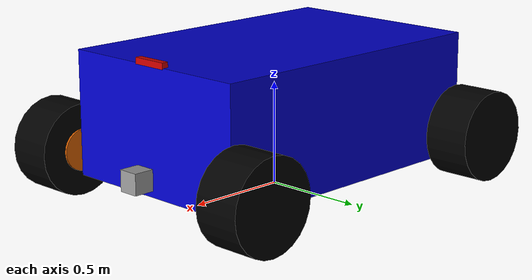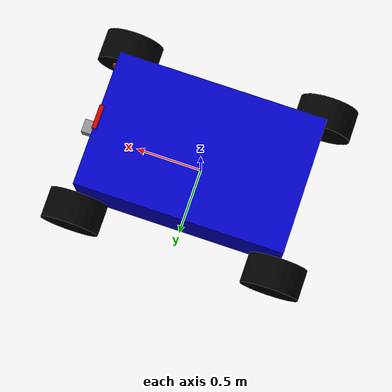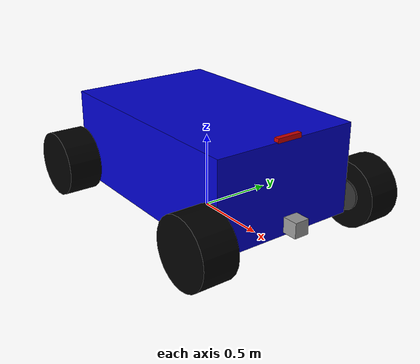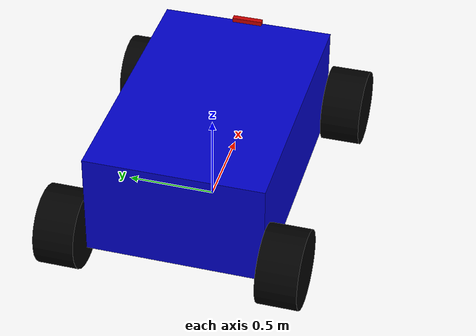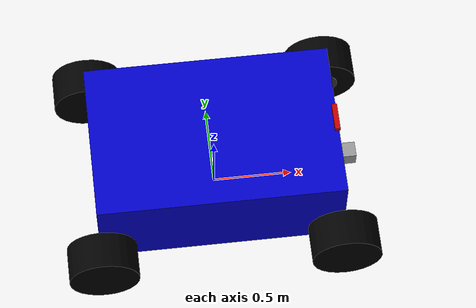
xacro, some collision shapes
<?xml version="1.0"?>
<robot name="racecar" xmlns:xacro="http://www.ros.org/wiki/xacro">

  <xacro:include filename="$(find bobcat_description)/urdf/macros.xacro" />

  <xacro:property name="PI" value="3.1415926835897931"/>
  <xacro:property name="base_height" value="0.4"/>
  <xacro:property name="base_mass" value="1000"/>
  <xacro:property name="base_mass_ixx" value="30"/>
  <xacro:property name="base_mass_iyy" value="500"/>
  <xacro:property name="base_mass_izz" value="550"/>
  <xacro:property name="base_mass_ixz" value="-15"/>
  <xacro:property name="tyre_x" value="0.76"/>
  <xacro:property name="tyre_y" value="0.5"/>
  <xacro:property name="tyre_length" value="0.229"/>
  <xacro:property name="tyre_height" value="-0.696"/>
  <xacro:property name="tyre_r" value="0.22"/>
  <xacro:property name="tyre_radius" value="0.22"/>
  <xacro:property name="tyre_mass" value="3"/>
  <xacro:property name="tyre_mass_ixx" value="20"/>
  <xacro:property name="tyre_mass_iyy" value="20"/>
  <xacro:property name="tyre_mass_izz" value="50"/>
  <xacro:property name="car_height" value="0.6"/>
  <xacro:property name="car_width" value="1.0"/>
  <xacro:property name="car_length" value="1.54"/>
  <xacro:property name="camera_box" value="0.1"/>
  <xacro:property name="str_length" value="0.01"/>
  <xacro:property name="str_radius" value="0.1"/>
  <xacro:property name="str_angle" value="0.5"/>
  <xacro:property name="tyre_origin">
	<origin xyz="0 0 0" rpy="${PI/2} 0 0"/>
  </xacro:property>
  <xacro:property name="tyre_origin_2">
        <origin xyz="0 0 0" rpy="0 0 ${PI/2}"/>
  </xacro:property>
  <xacro:property name="tyre_origin_3">
        <origin xyz="0 0 0" rpy="0 0 ${-PI/2}"/>
  </xacro:property>

  <!-- Add chassis and it's inertia link -->
  <link name="base_link">
    <collision>
	<origin xyz="0 0 ${base_height}" rpy= "0 0 0"/>
        <geometry>
            <box size="${car_length} ${car_width} ${car_height}"/>
        </geometry>
    </collision>
    <visual>
      <!--xacro:chassis_geometry/-->
      <origin xyz="0 0 ${base_height}" rpy="0 0 0" />
      <geometry>
        <box size="${car_length} ${car_width} ${car_height}"/>
      </geometry>
      <material name="blue" />
    </visual>
  </link>

  <link name="main_mass">
    <inertial>
      <!--xacro:chassis_inertial_params /-->
      <origin xyz="0 0 ${base_height}" rpy="0 0 0" />
      <mass value="${base_mass}" />
      <inertia
          ixx="${base_mass_ixx}"  ixy="0.000000" ixz="${base_mass_ixz}"
          iyy="${base_mass_iyy}"  iyz="0.000000"
          izz="${base_mass_izz}"/>
      </inertial>
      <dampingFactor>0.1</dampingFactor>
  </link>

  <joint name="inertia_joint" type="fixed">
    <parent link="base_link" />
    <child link="main_mass" />
    <origin xyz="0 0 0" rpy="0 0 0" />
  </joint>

  <!-- Left Rear Wheel -->
  <link name="left_rear_wheel">
    <collision>
      <xacro:insert_block name="tyre_origin"/>
      <!--xacro:left_wheels_collision_geometry/-->
      <geometry>
        <cylinder length="${tyre_length}" radius="${tyre_radius}"/>
      </geometry>
    </collision>
    <visual>
      <!--xacro:left_rear_wheel_geometry /-->
      <xacro:insert_block name="tyre_origin"/>
      <geometry>
        <cylinder length="${tyre_length}" radius="${tyre_radius}"/>
      </geometry>
      <material name="black" />
    </visual>
    <inertial>
      <!--xacro:left_wheels_inertial_params /-->
      <origin xyz="0 0 0" rpy="0 0 0"/>
      <mass value="${tyre_mass}"/>
      <inertia
          ixx="${tyre_mass_ixx}"  ixy="0.000000"  ixz="0.000000"
          iyy="${tyre_mass_iyy}"  iyz="0.000000"
          izz="${tyre_mass_izz}"/>
    </inertial>
  </link>

  <joint name="left_rear_wheel_joint" type="continuous">
    <parent link="base_link" />
    <child link="left_rear_wheel" />
    <origin xyz="${-tyre_x} ${car_width/2 + tyre_length/2} ${tyre_r}" rpy="0 0 ${PI}"/>
    <axis xyz="0 -1 0" />
    <dynamics damping="0.2"/>
    <limit effort="100000" velocity="100" />
    <joint_properties damping="0.0" friction="0.0" />
  </joint>
  <!-- this transmission is added to connect to wheel effort controller! dont delete"-->
  <xacro:wheel_transmission name="left_rear_wheel" />

  <!-- Right Rear Wheel -->
  <link name="right_rear_wheel">
    <collision>
      <!--xacro:right_wheels_collision_geometry /-->
      <xacro:insert_block name="tyre_origin"/>
      <geometry>
        <cylinder length="${tyre_length}" radius="${tyre_radius}"/>
      </geometry>
    </collision>
    <visual>
      <xacro:insert_block name="tyre_origin"/>
      <!--xacro:right_rear_wheel_geometry /-->
      <geometry>
        <cylinder length="${tyre_length}" radius="${tyre_radius}"/>
      </geometry>
      <material name="black" />
    </visual>
    <inertial>
      <!--xacro:right_wheels_inertial_params /-->
      <origin xyz="0 0 0" rpy="0 0 0"/>
      <mass value="${tyre_mass}"/>
      <inertia
          ixx="${tyre_mass_ixx}"  ixy="0.000000"  ixz="0.000000"
          iyy="${tyre_mass_iyy}"  iyz="0.000000"
          izz="${tyre_mass_izz}"/>
    </inertial>
  </link>

  <joint name="right_rear_wheel_joint" type="continuous">
    <parent link="base_link" />
    <child link="right_rear_wheel" />
    <origin xyz="${-tyre_x} ${-car_width/2 - tyre_length/2} ${tyre_r}" rpy="0 0 0"/>
    <axis xyz="0 1 0"/>
    <dynamics damping="0.2"/>
    <limit effort="100000" velocity="100" />
    <joint_properties damping="0.0" friction="0.0" />
  </joint>
  <!-- this transmission is added to connect to wheel effort controller! dont delete"-->
  <xacro:wheel_transmission name="right_rear_wheel" />

  <!-- Left Steering Hinge -->
  <link name="left_steering_hinge">
    <collision>
      <xacro:insert_block name="tyre_origin"/>
      <geometry>
        <cylinder length="${str_length}" radius="${str_radius}"/>
      </geometry>
    </collision>
    <visual>
      <!--xacro:left_steering_hinge_geometry /-->
      <xacro:insert_block name="tyre_origin"/>
      <geometry>
        <cylinder length="${str_length}" radius="${str_radius}"/>
      </geometry>
      <material name="grey" />
    </visual>
      <inertial>
        <origin xyz="0 0 0" rpy="0 0 0"/>
        <mass value="10.00"/>
        <inertia
          ixx="0.4"  ixy="0.000000"  ixz="0.000000"
          iyy="0.6"  iyz="0.000000"
          izz="0.4"/>
    </inertial>
  </link>

  <joint name="left_steering_hinge_joint" type="revolute">
    <parent link="base_link" />
    <child link="left_steering_hinge" />
    <origin xyz="${tyre_x} ${car_width/2 + str_length/2} ${tyre_r}" rpy="0 0 ${PI}"/>
    <axis xyz="0 0 1"/>
    <limit effort="1000.0" lower="${-str_angle}" upper="${str_angle}" velocity="1.0"/>
  </joint>
  <!-- this transmission is added to connect to wheel effort controller! dont delete"-->
  <xacro:steering_hinge_transmission name="left_steering_hinge" />

  <!-- Right Steering Hinge -->

  <link name="right_steering_hinge">
    <collision>
      <xacro:insert_block name="tyre_origin"/>
      <geometry>
        <cylinder length="${str_length}" radius="${str_radius}"/>
      </geometry>
    </collision>
    <visual>
      <xacro:insert_block name="tyre_origin"/>
      <geometry>
        <cylinder length="${str_length}" radius="${str_radius}"/>
      </geometry>
    </visual>
    <inertial>
      <origin xyz="0 0 0" rpy="0 0 0"/>
      <mass value="10.00"/>
      <inertia
          ixx="0.4"  ixy="0.000000"  ixz="0.000000"
          iyy="0.6"  iyz="0.000000"
          izz="0.4"/>
    </inertial>
  </link>

  <joint name="right_steering_hinge_joint" type="revolute">
    <parent link="base_link" />
    <child link="right_steering_hinge" />
    <origin xyz="${tyre_x} ${-car_width/2 - str_length/2} ${tyre_r}" rpy="0 0 0"/>
    <axis xyz="0 0 1"/>
    <limit effort="1000.0" lower="${-str_angle}" upper="${str_angle}" velocity="1.0"/>
  </joint>
  <!-- this transmission is added to connect to wheel effort controller! dont delete"-->
  <xacro:steering_hinge_transmission name="right_steering_hinge" />

  <!-- Left Front Wheel -->

  <link name="left_front_wheel">
    <collision>
      <!--xacro:left_wheels_collision_geometry /-->
      <xacro:insert_block name="tyre_origin"/>
      <geometry>
         <cylinder length="${tyre_length}" radius="${tyre_radius}"/>
      </geometry>
    </collision>
    <visual>
      <!--xacro:left_front_wheel_geometry /-->
      <xacro:insert_block name="tyre_origin"/>
      <geometry>
         <cylinder length="${tyre_length}" radius="${tyre_radius}"/>
      </geometry>
      <material name="black" />
    </visual>
    <inertial>
      <!--xacro:left_wheels_inertial_params /-->
      <origin xyz="0 0 0" rpy="0 0 0"/>
      <mass value="${tyre_mass}"/>
      <inertia
          ixx="${tyre_mass_ixx}"  ixy="0.000000"  ixz="0.000000"
          iyy="${tyre_mass_iyy}"  iyz="0.000000"
          izz="${tyre_mass_izz}"/>
    </inertial>
  </link>

  <joint name="left_front_wheel_joint" type="continuous">
    <parent link="left_steering_hinge" />
    <child link="left_front_wheel" />
    <origin xyz="0 ${-str_length/2 - tyre_length/2} 0" rpy="0 0 0"/>
    <axis xyz="0 1 0" />
    <dynamics damping="0.1"/>
    <limit effort="10000" velocity="100" />
    <joint_properties damping="0.0" friction="0.0" />
  </joint>
  <!-- this transmission is added to connect to wheel effort controller! dont delete"-->
  <xacro:wheel_transmission name="left_front_wheel" />

  <!-- Right Front Wheel -->
  <link name="right_front_wheel">
    <collision>
      <!--xacro:right_wheels_collision_geometry /-->
      <xacro:insert_block name="tyre_origin"/>
      <geometry>
        <cylinder length="${tyre_length}" radius="${tyre_radius}"/>
      </geometry>
    </collision>
    <visual>
      <!--xacro:right_front_wheel_geometry /-->
      <xacro:insert_block name="tyre_origin"/>
      <geometry>
        <cylinder length="${tyre_length}" radius="${tyre_radius}"/>
      </geometry>
      <material name="black" />
    </visual>
    <inertial>
      <!--xacro:right_wheels_inertial_params /-->
      <origin xyz="0 0 0" rpy="0 0 0"/>
      <mass value="${tyre_mass}"/>
      <inertia
          ixx="${tyre_mass_ixx}"  ixy="0.000000"  ixz="0.000000"
          iyy="${tyre_mass_iyy}"  iyz="0.000000"
          izz="${tyre_mass_izz}"/>
    </inertial>
  </link>

  <joint name="right_front_wheel_joint" type="continuous">
    <parent link="right_steering_hinge" />
    <child link="right_front_wheel" />
    <origin xyz="0 ${-str_length/2 - tyre_length/2} 0" rpy="0 0 0"/>
    <axis xyz="0 1 0" />
    <dynamics damping="0.1"/>
    <limit effort="10000" velocity="100" />
    <joint_properties damping="0.0" friction="0.0" />
  </joint>
  <!-- this transmission is added to connect to wheel effort controller! dont delete"-->
  <xacro:wheel_transmission name="right_front_wheel" />

<!-- Add IMU -->
<link name="imu_link">
  <inertial>
    <mass value="0.001"/>
    <origin rpy="0 0 0" xyz="0 0 0"/>
    <inertia ixx="0.0001" ixy="0" ixz="0" iyy="0.000001" iyz="0" izz="0.0001"/>
  </inertial>
  <visual>
    <origin rpy="0 0 0" xyz="0 0 0"/>
    <geometry>
      <box size="0.001 0.001 0.001"/>
    </geometry>
  </visual>
  <collision>
    <origin rpy="0 0 0" xyz="0 0 0"/>
    <geometry>
      <box size=".001 .001 .001"/>
    </geometry>
  </collision>
</link>

  <joint name="imu_joint" type="fixed">
    <axis xyz="1 0 0"/>
    <origin xyz="0 0 0.19"/>
    <parent link="base_link"/>
    <child link="imu_link"/>
  </joint>

  <!-- Add Hokuyo laser scanner -->

  <link name="laser">
    <inertial>
      <xacro:hokuyo_inertial_params />
    </inertial>
    <collision>
      <origin xyz="0 0 0" rpy="0 0 0"/>
      <geometry>
        <box size="0.1 0.1 0.1"/>
      </geometry>
    </collision>
    <visual>
      <origin xyz="0 0 0" rpy="0 0 0"/>
      <geometry>
        <mesh filename="package://bobcat_description/meshes/hokuyo.dae"/>
        <material name="grey" />
      </geometry>
    </visual>
  </link>

  <joint name="hokuyo_joint" type="fixed">
    <!--origin xyz="${tyre_x + 0.1} 0 ${car_height - tyre_r/2}" /-->
    <origin xyz="${tyre_x + 0.1} 0 0.2" />
    <parent link="base_link" />
    <child link="laser" />
    <axis xyz="0 0 1" />
  </joint>

  <!-- zed camera -->
  <link name="zed_camera_link">
    <inertial>
      <mass value="1e-5" />
      <origin xyz="0 0 0" rpy="0 0 0"/>
      <inertia ixx="1e-6" ixy="0" ixz="0" iyy="1e-6" iyz="0" izz="1e-6" />
    </inertial>
    <collision>
      <origin xyz="0 0 0" rpy="0 0 0"/>
      <geometry>
        <box size="0.033 0.175 0.030"/>
      </geometry>
    </collision>
    <visual>
      <origin xyz="0 0 0" rpy="0 0 0"/>
      <geometry>
        <box size="0.033 0.175 0.030"/>
      </geometry>
      <material name="red"/>
    </visual>
  </link>

  <joint name="zed_camera_joint" type="fixed">
    <origin xyz="${tyre_x} 0 ${car_height + tyre_r/2}" />
    <parent link="base_link"/>
    <child link="zed_camera_link"/>
    <axis xyz="0 0 1" />
    <!--limit lower="0.0" upper="0.0" effort="0.0" velocity="0.0" /-->
  </joint>

  <!-- zed camera lenses -->
  <!-- It seems these have to have a non-zero mass to have a camera attached? -->
  <link name="camera_link"><!-- this needs to match the name in zed_wrapper/zed_tf.launch -->
    <inertial>
      <mass value="1e-5" />
      <origin xyz="0 0 0" rpy="0 0 0"/>
      <inertia ixx="1e-6" ixy="0" ixz="0" iyy="1e-6" iyz="0" izz="1e-6" />
    </inertial>
  </link>
  <link name="zed_camera_right_link">
    <inertial>
      <mass value="1e-5" />
      <origin xyz="0 0 0" rpy="0 0 0"/>
      <inertia ixx="1e-6" ixy="0" ixz="0" iyy="1e-6" iyz="0" izz="1e-6" />
    </inertial>
  </link>

  <joint name="zed_camera_left_joint" type="fixed">
    <origin xyz="0 0.06 0" rpy="0 0 0"/>
    <parent link="zed_camera_link"/>
    <child link="camera_link"/>
    <axis xyz="0 0 1" />
  </joint>
  <joint name="zed_camera_right_joint" type="fixed">
    <origin xyz="0 -0.06 0" rpy="0 0 0"/>
    <parent link="zed_camera_link"/>
    <child link="zed_camera_right_link"/>
    <axis xyz="0 0 1" />
  </joint>

  <!-- Add the remaining xacros -->

  <xacro:include filename="$(find bobcat_description)/urdf/bobcat.gazebo" />
  <xacro:include filename="$(find bobcat_description)/urdf/materials.xacro" />

</robot>

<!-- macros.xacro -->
<robot name="bobcat" xmlns:xacro="http://www.ros.org/wiki/xacro">

<!-- inertial parameter macros -->

<xacro:macro name="chassis_inertial_params">
  <origin xyz="0.1477 0 0" rpy="0 0 0" />
  <mass value="4.0" />
  <inertia ixx="0.010609" ixy="0"          ixz="0"
                          iyy="0.050409"   iyz="0"
                                           izz="0.05865" />
</xacro:macro>

<xacro:macro name="back_axel_inertial_params">
  <origin xyz="0 0 -0.0225" rpy="0 0 0" />
  <mass value="0.34055" />
  <inertia ixx="0.00026046" ixy="0"          ixz="0"
                            iyy="0.00026046" iyz="0"
                                             izz="0.00041226" />
</xacro:macro>

<xacro:macro name="left_wheels_inertial_params">
  <origin xyz="0 0 -0.0225" rpy="0 0 0" />
  <mass value="0.34055" />
  <inertia ixx="0.00026046" ixy="0"          ixz="0"
                            iyy="0.00026046" iyz="0"
                                             izz="0.00041226" />
</xacro:macro>

<xacro:macro name="right_wheels_inertial_params">
  <origin xyz="0 0 0.0225" rpy="0 0 0" />
  <mass value="0.34055" />
  <inertia ixx="0.00026046" ixy="0"          ixz="0"
                            iyy="0.00026046" iyz="0"
                                             izz="0.00041226" />
</xacro:macro>

<xacro:macro name="steering_hinge_inertial_params">
  <origin xyz="0 0 0" rpy="0 0 0" />
  <mass value="0.100" />
  <inertia ixx="4E-06" ixy="0"           ixz="0"
                            iyy="4E-06"  iyz="0"
                                              izz="4E-06" />
</xacro:macro>

<xacro:macro name="hokuyo_inertial_params">
  <origin xyz="0 0 0" rpy="0 0 0" />
  <mass value="0.130" />
  <inertia ixx="4E-06" ixy="0"           ixz="0"
                            iyy="4E-06"  iyz="0"
                                              izz="4E-06" />
</xacro:macro>

<!-- geometry macros -->

<xacro:macro name="chassis_geometry">
  <origin xyz="0 0 0" rpy="0 0 0" />
  <geometry>
    <!--mesh filename="package://bobcat_description/meshes/chassis.STL" /-->
    <box size="${car_length} ${car_width} ${car_height}"/>
  </geometry>
</xacro:macro>

<xacro:macro name="left_rear_wheel_geometry">
  <origin xyz="0 0 0" rpy="0 0 0" />
  <geometry>
    <mesh filename="package://bobcat_description/meshes/left_rear_wheel.STL" />
  </geometry>
</xacro:macro>

<xacro:macro name="right_rear_wheel_geometry">
  <origin xyz="0 0 0" rpy="0 0 0" />
  <geometry>
    <mesh filename="package://bobcat_description/meshes/right_rear_wheel.STL" />
  </geometry>
</xacro:macro>

<xacro:macro name="left_front_wheel_geometry">
  <origin xyz="0 0 0" rpy="0 0 0" />
  <geometry>
    <mesh filename="package://bobcat_description/meshes/left_front_wheel.STL" />
  </geometry>
</xacro:macro>

<xacro:macro name="right_front_wheel_geometry">
  <origin xyz="0 0 0" rpy="0 0 0" />
  <geometry>
    <mesh filename="package://bobcat_description/meshes/right_front_wheel.STL" />
  </geometry>
</xacro:macro>

<xacro:macro name="left_steering_hinge_geometry">
  <origin xyz="0 0 0" rpy="0 0 0" />
  <geometry>
    <mesh filename="package://bobcat_description/meshes/left_steering_hinge.STL" />
  </geometry>
</xacro:macro>

<xacro:macro name="right_steering_hinge_geometry">
  <origin xyz="0 0 0" rpy="0 0 0" />
  <geometry>
    <mesh filename="package://bobcat_description/meshes/right_steering_hinge.STL" />
  </geometry>
</xacro:macro>

<xacro:macro name="left_wheels_collision_geometry">
  <origin xyz="0 0 -0.0225" rpy="0 0 0" />
  <geometry>
    <cylinder length="0.045" radius="0.05" />
  </geometry>
</xacro:macro>

<xacro:macro name="right_wheels_collision_geometry">
  <origin xyz="0 0 0.0225" rpy="0 0 0" />
  <geometry>
    <cylinder length="0.045" radius="0.05" />
  </geometry>
</xacro:macro>

<!-- transmission macros -->

<xacro:macro name="wheel_transmission" params="name">
  <transmission name="${name}_transmission" type="SimpleTransmission">
    <type>transmission_interface/SimpleTransmission</type>
    <joint name="${name}_joint">
      <hardwareInterface>hardware_interface/EffortJointInterface</hardwareInterface>
    </joint>
    <actuator name="${name}_motor">
      <hardwareInterface>hardware_interface/EffortJointInterface</hardwareInterface>
      <mechanicalReduction>1</mechanicalReduction>
    </actuator>
  </transmission>
</xacro:macro>

<xacro:macro name="steering_hinge_transmission" params="name">
  <transmission name="${name}_transmission" type="SimpleTransmission">
    <type>transmission_interface/SimpleTransmission</type>
    <joint name="${name}_joint">
      <hardwareInterface>hardware_interface/EffortJointInterface</hardwareInterface>
    </joint>
    <actuator name="${name}_motor">
      <hardwareInterface>hardware_interface/EffortJointInterface</hardwareInterface>
      <mechanicalReduction>1</mechanicalReduction>
    </actuator>
  </transmission>
</xacro:macro>

</robot>

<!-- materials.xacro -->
<robot name="bobcat" xmlns:xacro="http://www.ros.org/wiki/xacro">

<material name="black">
  <color rgba="0.0 0.0 0.0 1.0"/>
</material>

<material name="blue">
  <color rgba="0.0 0.0 0.8 1.0"/>
</material>

<material name="green">
  <color rgba="0.0 0.8 0.0 1.0"/>
</material>

<material name="grey">
  <color rgba="0.2 0.2 0.2 1.0"/>
</material>

<material name="orange">
  <color rgba="${255/255} ${108/255} ${10/255} 1.0"/>
</material>

<material name="brown">
  <color rgba="${222/255} ${207/255} ${195/255} 1.0"/>
</material>

<material name="red">
  <color rgba="0.8 0.0 0.0 1.0"/>
</material>

<material name="white">
  <color rgba="1.0 1.0 1.0 1.0"/>
</material>

</robot>
